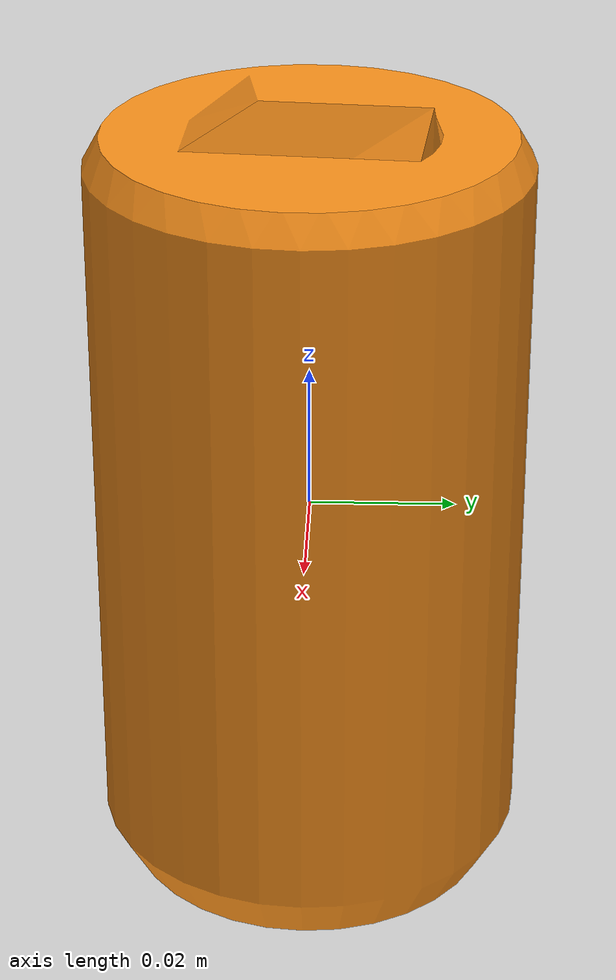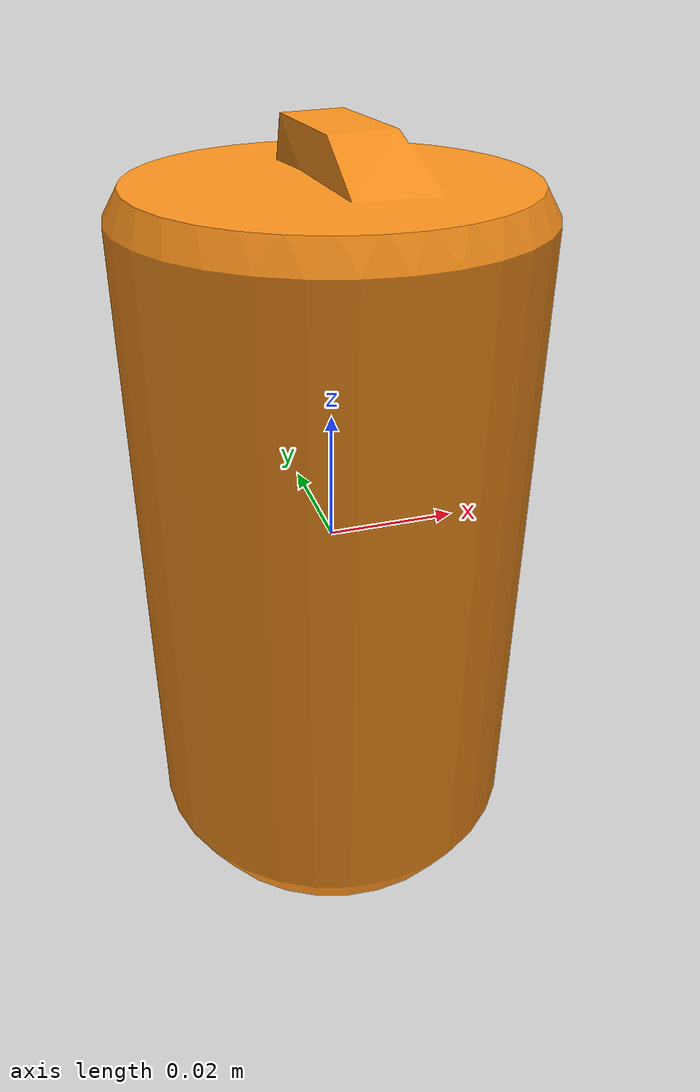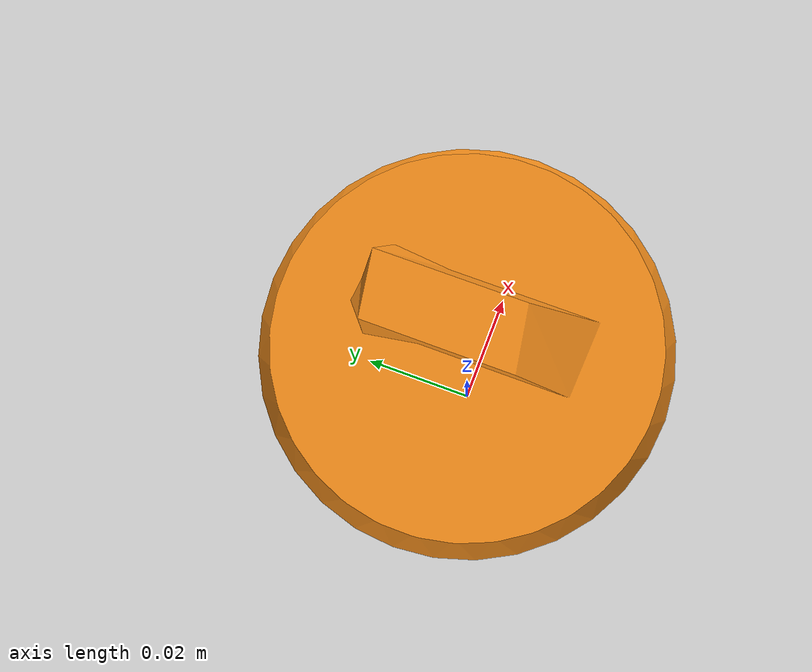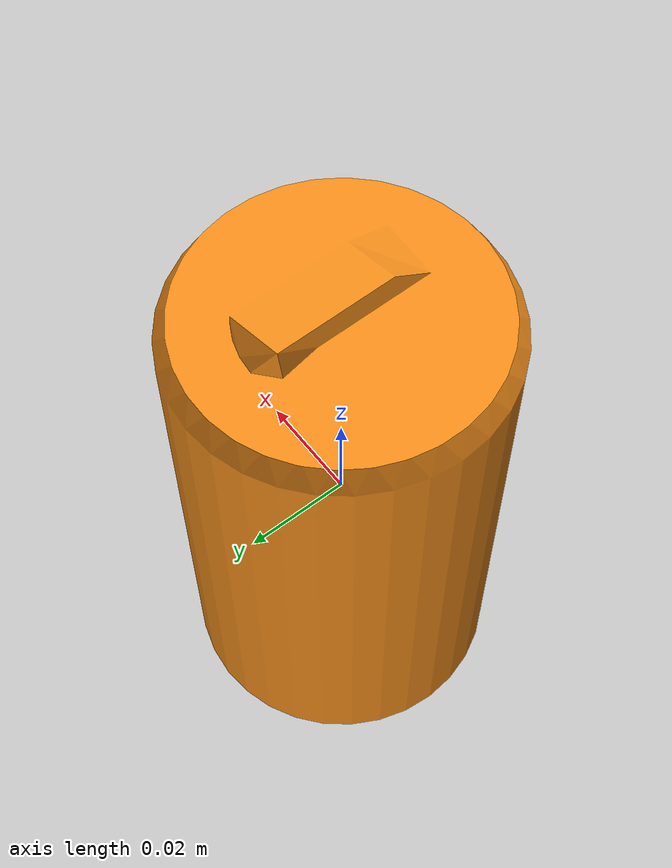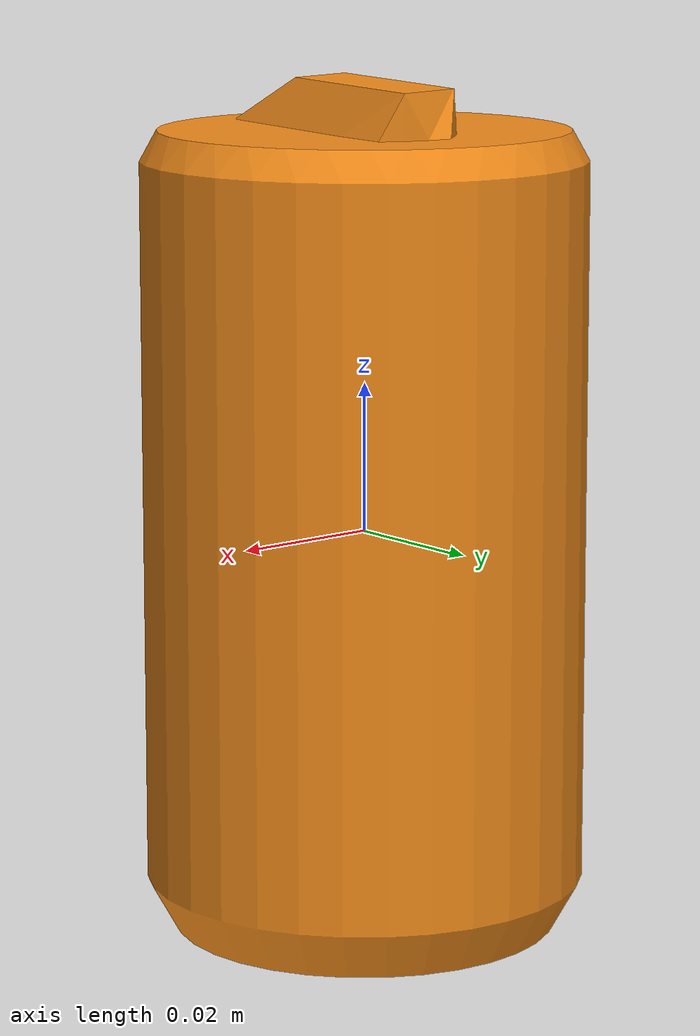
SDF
<?xml version='1.0'?>
<sdf version='1.7'>
  <model name='Beverage_Can_Orange'>
    <static>false</static>
    <pose>0 0 0 0 0 0</pose>

    <link name="beverage_can_orange">
        <collision name="beverage_can_orange_collision">
            <geometry>
            <mesh>
                <uri>$(find artpark_gazebo)/models/beverage_can.dae</uri>
            </mesh>
            </geometry>
        </collision>
        <visual name="beverage_can_orange_visual">
            <geometry>
            <mesh>
                <uri>$(find artpark_gazebo)/models/beverage_can.dae</uri>
            </mesh>
            </geometry>
            <material>
                <script>
                    <name>Gazebo/Orange</name>
                </script>
            </material>
        </visual>
    </link>

  </model>
</sdf>
